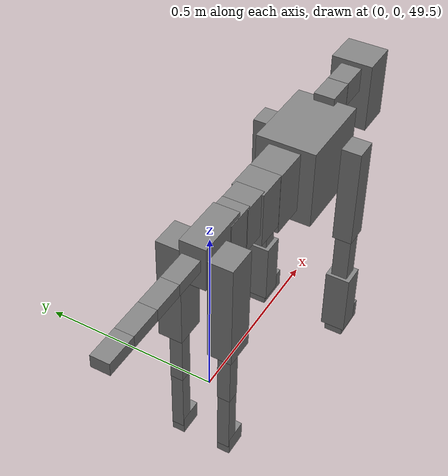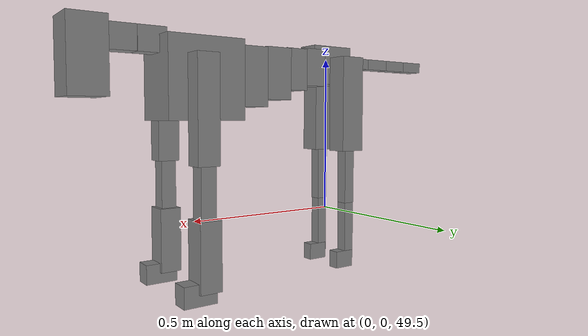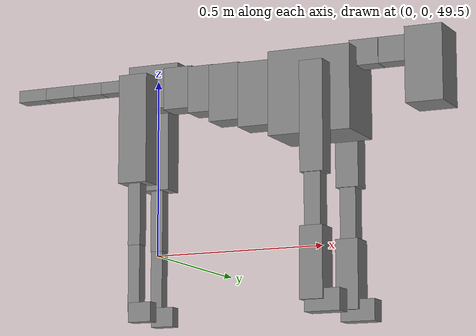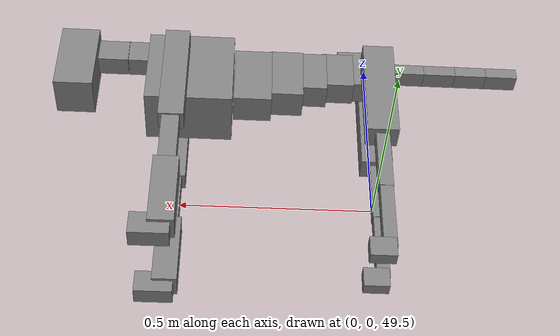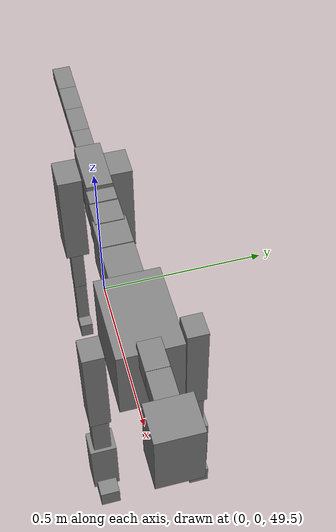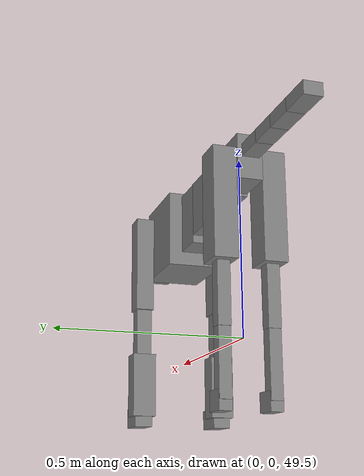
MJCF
<mujoco model="dog">

    <default>
        <joint armature="0.02" stiffness="1" damping="0.2" limited="true"/>
        <geom condim="3" friction="1 0.05 0.05" margin="0.01"/>
        <motor ctrllimited="true" ctrlrange="-1.0 1.0" forcelimited="true" gear="50"/>
    </default>

    <compiler inertiafromgeom="true" angle="radian"/>

    <option timestep="0.016" iterations="50" tolerance="1e-10" solver="Newton" jacobian="dense" cone="pyramidal"/>

    <size nconmax="20000" njmax="60000" nstack="5000000"/>
    <visual>
        <map force="0.1" zfar="30"/>
        <rgba haze="0.15 0.25 0.35 1"/>
        <quality shadowsize="2048"/>
        <global offwidth="800" offheight="800"/>
    </visual>

    <asset>
        <texture type="skybox" builtin="gradient" rgb1="0.3 0.5 0.7" rgb2="0 0 0" width="512" height="512"/>
        <texture name="texplane" type="2d" builtin="checker" rgb1=".2 .3 .4" rgb2=".1 0.15 0.2" width="512" height="512"
                 mark="cross" markrgb=".8 .8 .8"/>
        <texture name="texgeom" type="cube" builtin="flat" mark="cross" width="127" height="1278" rgb1="0.8 0.6 0.4"
                 rgb2="0.8 0.6 0.4" markrgb="1 1 1" random="0.01"/>

        <material name="matplane" reflectance="0.3" texture="texplane" texrepeat="1 1" texuniform="true"/>
        <material name="matgeom" texture="texgeom" texuniform="true" rgba="0.8 0.6 .4 1"/>
    </asset>

    <worldbody>
        <geom name="floor" pos="0 0 0" size="0 0 .25" type="plane" material="matplane" condim="3"/>

        <light directional="false" diffuse=".2 .2 .2" specular="0 0 0" pos="0 0 5" dir="0 0 -1" castshadow="false"/>
        <light mode="targetbodycom" target="torso" directional="false" diffuse=".8 .8 .8" specular="0.3 0.3 0.3"
               pos="0 0 4.0" dir="0 0 -1"/>

        <body name="root" pos="0 0 50">
            <freejoint name="root_1"/>
            <geom type="box" pos="0 0 -0.02" size="0.0774  0.0358  0.063" density="2030"/>

            <body name="spine1" pos="0.054 0 0">
                <joint name="spine1_y" axis="0 1 0" range="0 0.7" limited="true"/>
                <geom type="box" pos="0.02375 0 -0.03" size="0.04375  0.0375  0.05985" density="2030"/>

                <body name="spine2" pos="0.0612 0 0">
                    <joint name="spine2_y" axis="0 1 0" range="-0.15 0.15" limited="true"/>
                    <geom type="box" pos="0.03555  0  -0.04" size="0.04055  0.039  0.06615" density="2030"/>

                    <body name="spine3" pos="0.0730 0 0">
                        <joint name="spine3_y" axis="0 1 0" range="-0.15 0.15" limited="true"/>
                        <geom type="box" pos="0.03555  0  -0.057" size="0.04555  0.0445  0.081" density="2030"/>

                        <body name="spine4" pos="0.0780 0 0">
                            <joint name="spine4_y" axis="0 1 0" range="-0.15 0.15" limited="true"/>
                            <geom type="box" pos="0.05265  0  -0.07" size="0.05265  0.045  0.09135" density="2030"/>

                            <body name="torso" pos="0.1082 0 0">
                                <joint name="torso_y" axis="0 1 0" range="-0.15 0.15" limited="true"/>
                                <geom type="box" pos="0.11925  0  -0.085" size="0.11925  0.085  0.11745"
                                      density="2030"/>

                                <body name="neck1" pos="0.2160  0   0.0180">
                                    <joint name="neck1_y" axis="0 1 0" range="-1.2  -1" limited="true"/>
                                    <geom type="box" pos="0.0423  0  0" size="0.0423  0.03  0.036" density="2325"/>

                                    <body name="neck2" pos="0.0853  0  0">
                                        <joint name="neck2_y" axis="0 1 0" range="0.1  0" limited="true"/>
                                        <geom type="box" pos="0.0423  0  0" size="0.0423  0.03  0.036" density="2325"/>

                                        <body name="head" pos="0.0853  0  0">
                                            <joint name="head_y" axis="0 1 0" range="-0.3  -0.2" limited="true"/>
                                            <geom type="box" pos="0.0531  0  -0.055" size="0.0531  0.06  0.1044"
                                                  density="4030"/>

                                        </body>
                                    </body>
                                </body>

                                <body name="front_shoulder" pos="0.156  0   -0.0480">
                                    <joint name="front_shoulder_y" axis="0 1 0" range="-1 1.5" limited="true"/>
                                    <geom type="box" pos="0 0.13 -0.1252" size="0.0333  0.0284  0.1518" density="1158"/>
                                    <geom type="box" pos="0 -0.13 -0.1252" size="0.0333  0.0284  0.1518"
                                          density="1158"/>

                                    <body name="front_elbow" pos="0  0  -0.2503">
                                        <joint name="front_elbow_y" axis="0 1 0" range="-2 0" limited="true"/>
                                        <geom type="box" pos="0 0.13 -0.0923" size="0.0232  0.0237  0.0923"
                                              density="1081"/>
                                        <geom type="box" pos="0 -0.13 -0.0923" size="0.0232  0.0237  0.0923"
                                              density="1081"/>

                                        <body name="front_wrist" pos="0  0  -0.1846">
                                            <joint name="front_wrist_y" axis="0 1 0" range="-0.2 0" limited="true"/>
                                            <geom type="box" pos="0 0.13 -0.0846" size="0.0326  0.0362  0.0978"
                                                  density="1664"/>
                                            <geom type="box" pos="0 -0.13 -0.0846" size="0.0326  0.0362  0.0978"
                                                  density="1664"/>

                                            <body name="front_finger_end" pos="0  0  -0.1692">
                                                <joint name="front_finger_y" axis="0 1 0" range="-0.4 1"
                                                       limited="true"/>
                                                <geom type="box" pos="0.0271  0.13  -0.0151"
                                                      size="0.0497  0.0271  0.0301" density="1515"/>
                                                <geom type="box" pos="0.0271  -0.13  -0.0151"
                                                      size="0.0497  0.0271  0.0301" density="1515"/>

                                            </body>

                                        </body>
                                    </body>
                                </body>

                            </body>
                        </body>
                    </body>
                </body>
            </body>

            <body name="back_hip" pos="-0.03 0 -0.018">
                <joint name="back_hip_y" axis="0 1 0" range="-1.5 0.3" limited="true"/>
                <geom type="box" pos="0 0.07 -0.1314" size="0.0428  0.0335  0.1542" density="1154"/>
                <geom type="box" pos="0 -0.07 -0.1314" size="0.0428  0.0335  0.1542" density="1154"/>

                <body name="back_knee" pos="0  0  -0.2628">
                    <joint name="back_knee_y" axis="0 1 0" range="0 2.8" limited="true"/>
                    <geom type="box" pos="0 0.07 -0.0904" size="0.0186  0.0183  0.1060" density="1227"/>
                    <geom type="box" pos="0 -0.07 -0.0904" size="0.0186  0.0183  0.1060" density="1227"/>

                    <body name="back_ankle" pos="0  0  -0.1808">
                        <joint name="back_ankle_y" axis="0 1 0" range="-2.2 0" limited="true"/>
                        <geom type="box" pos="0 0.07 -0.0957" size="0.0175  0.0175  0.1069" density="1284"/>
                        <geom type="box" pos="0 -0.07 -0.0957" size="0.0175  0.0175  0.1069" density="1284"/>

                        <body name="back_toe_end" pos="0  0  -0.1913">
                            <joint name="back_toe_y" axis="0 1 0" range="-0.4 1" limited="true"/>
                            <geom type="box" pos="0.0184  0.07  -0.0123" size="0.0338  0.0184  0.0273" density="1515"/>
                            <geom type="box" pos="0.0184  -0.07  -0.0123" size="0.0338  0.0184  0.0273" density="1515"/>

                        </body>
                    </body>
                </body>
            </body>

            <body name="tail1" pos="-0.074 0 -0.006">
                <joint name="tail1_y" axis="0 1 0" range="-0.2 0.2" limited="true"/>
                <geom type="box" pos="-0.0536  0  0" size="0.045  0.025  0.0175" density="1587"/>

                <body name="tail2" pos="-0.09 0 0">
                    <joint name="tail2_y" axis="0 1 0" range="-0.2 0.2" limited="true"/>
                    <geom type="box" pos="-0.0536  0  0" size="0.045  0.025  0.0175" density="1587"/>

                    <body name="tail3" pos="-0.09 0 0">
                        <joint name="tail3_y" axis="0 1 0" range="-0.2 0.2" limited="true"/>
                        <geom type="box" pos="-0.0536  0  0" size="0.045  0.025  0.0175" density="1587"/>

                        <body name="tail4" pos="-0.09 0 0">
                            <joint name="tail4_y" axis="0 1 0" range="-0.2 0.2" limited="true"/>
                            <geom type="box" pos="-0.0536  0  0" size="0.045  0.025  0.0175" density="1587"/>

                        </body>
                    </body>
                </body>
            </body>
        </body>
    </worldbody>

    <actuator>
        <motor joint="spine1_y" forcerange="-150 150     "/>
        <motor joint="spine2_y" forcerange="-150 150     "/>
        <motor joint="spine3_y" forcerange="-150 150     "/>
        <motor joint="spine4_y" forcerange="-150 150     "/>
        <motor joint="torso_y" forcerange="-150 150     "/>
        <motor joint="neck1_y" forcerange="-100 100       "/>
        <motor joint="neck2_y" forcerange="-100 100       "/>
        <motor joint="head_y" forcerange="-150 150       "/>
        <motor joint="front_shoulder_y" forcerange="-179.30 110.17"/>
        <motor joint="front_elbow_y" forcerange="-152.80 119.61"/>
        <motor joint="front_wrist_y" forcerange="-145.12 144.80"/>
        <motor joint="front_finger_y" forcerange="-27.65 77.01"/>
        <motor joint="back_hip_y" forcerange="-384.06 263.14"/>
        <motor joint="back_knee_y" forcerange="-254.81 211.31"/>
        <motor joint="back_angle_y" forcerange="-117.45 62.01"/>
        <motor joint="back_toe_y" forcerange="-42.17 25.20"/>
        <motor joint="tail1_y" forcerange="-50 50     "/>
        <motor joint="tail2_y" forcerange="-50 50     "/>
        <motor joint="tail3_y" forcerange="-50 50     "/>
        <motor joint="tail4_y" forcerange="-50 50     "/>
    </actuator>
</mujoco>
